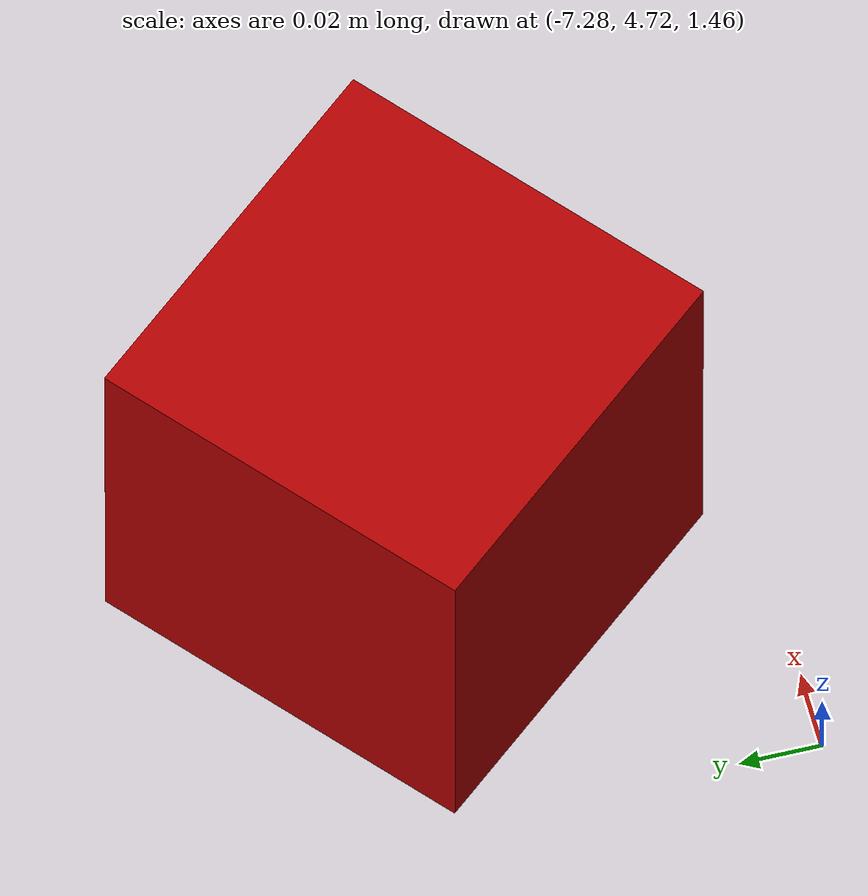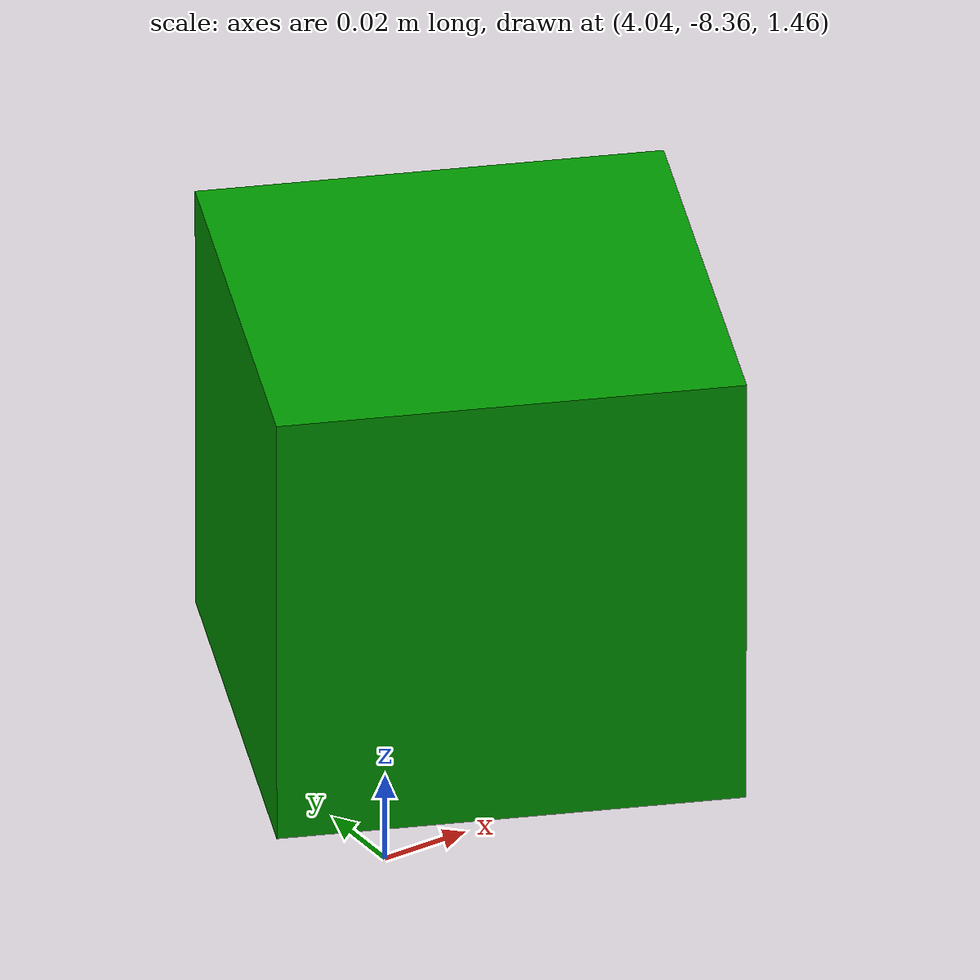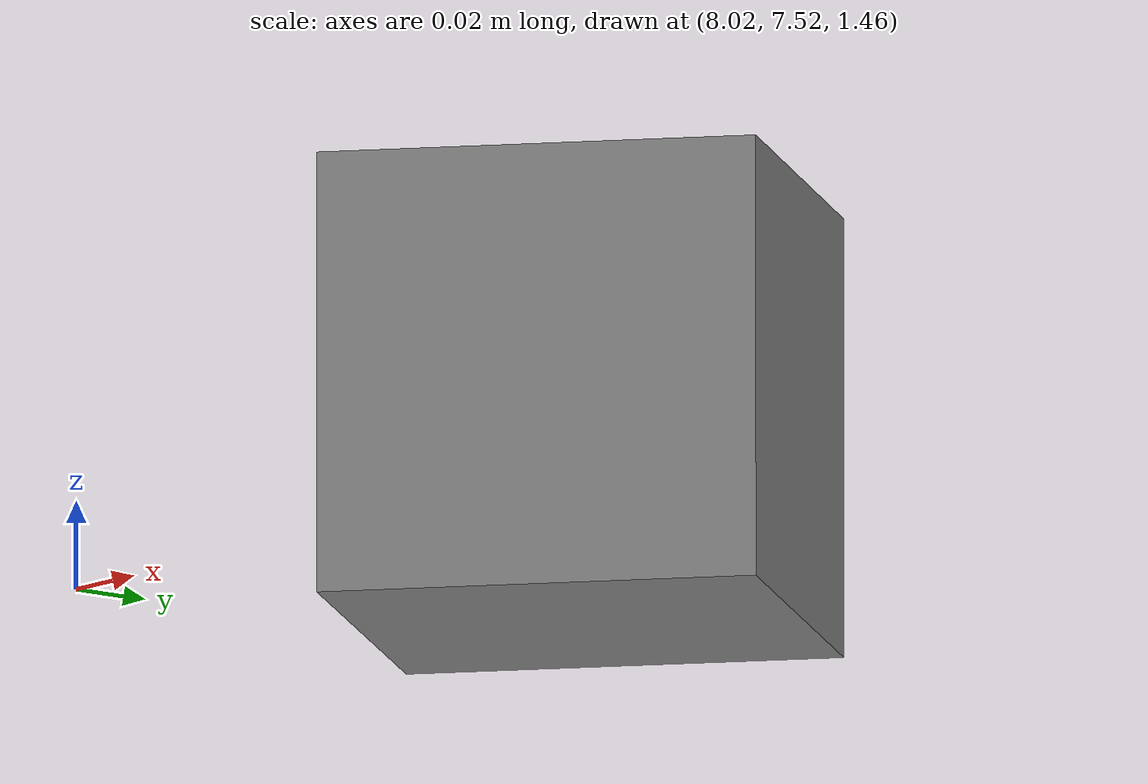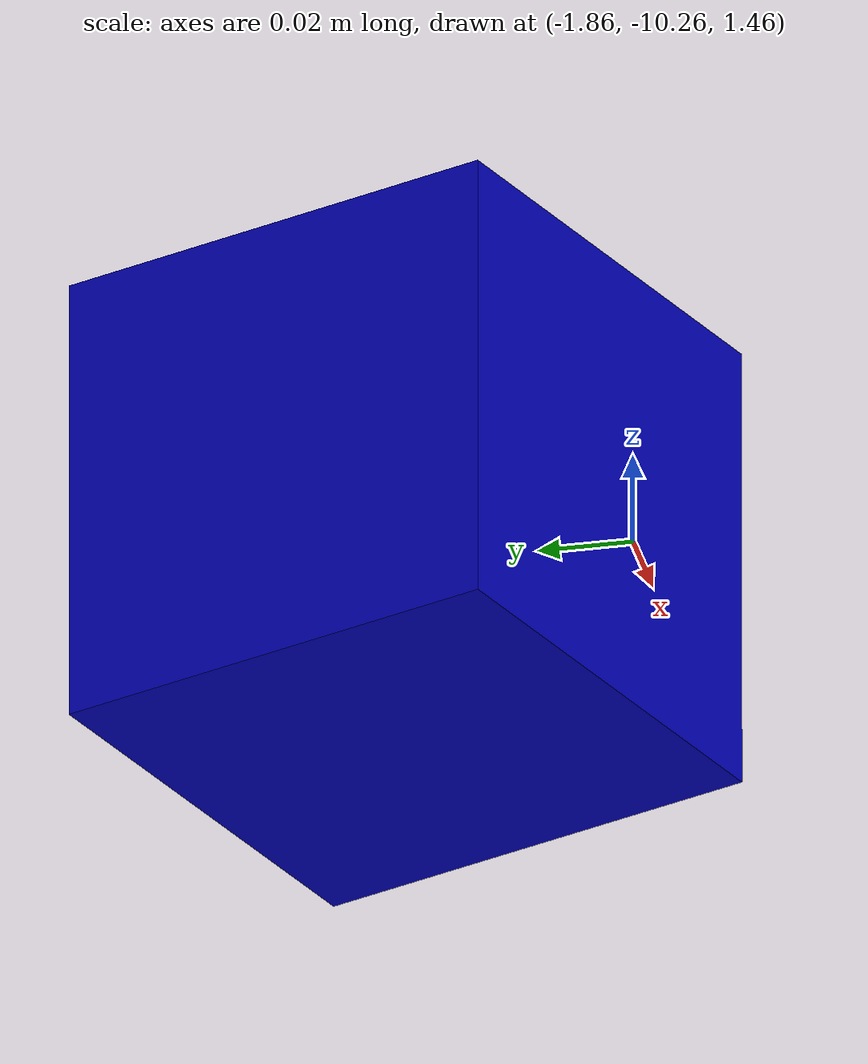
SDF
<?xml version='1.0'?>
<sdf version='1.8'>
  <model name='cubes'>
    <pose>0 0 0 0 0 0</pose>
    <static>false</static>

    <link name='cube_1'>
      <pose>-7.2 4.8 1.5 0 0 0.7</pose>
      <collision name='cube_1_collision'>
        <geometry>
          <box>
            <size>0.1 0.1 0.1</size>
          </box>
        </geometry>
      </collision>
      <visual name='cube_1_visual'>
        <geometry>
          <box>
            <size>0.1 0.1 0.1</size>
          </box>
        </geometry>
        <material>
          <ambient>0.5 0 0 1</ambient>
          <diffuse>0.7 0 0 1</diffuse>
          <specular>0.2 0 0 1</specular>
        </material>
      </visual>
      <inertial>
        <mass>0.1</mass>
        <inertia>
          <ixx>0.000167</ixx>
          <ixy>0</ixy>
          <ixz>0</ixz>
          <iyy>0.000167</iyy>
          <iyz>0</iyz>
          <izz>0.000167</izz>
        </inertia>
      </inertial>
    </link>
    <link name='cube_2'>
      <pose>4.1 -8.3 1.5 0 0 -0.4</pose>
      <collision name='cube_2_collision'>
        <geometry>
          <box>
            <size>0.1 0.1 0.1</size>
          </box>
        </geometry>
      </collision>
      <visual name='cube_2_visual'>
        <geometry>
          <box>
            <size>0.1 0.1 0.1</size>
          </box>
        </geometry>
        <material>
          <ambient>0 0.4 0 1</ambient>
          <diffuse>0 0.6 0 1</diffuse>
          <specular>0 0.2 0 1</specular>
        </material>
      </visual>
      <inertial>
        <mass>0.1</mass>
        <inertia>
          <ixx>0.000167</ixx>
          <ixy>0</ixy>
          <ixz>0</ixz>
          <iyy>0.000167</iyy>
          <iyz>0</iyz>
          <izz>0.000167</izz>
        </inertia>
      </inertial>
    </link>
    <link name='cube_3'>
      <pose>-1.8 -10.2 1.5 0 0 1.2</pose>
      <collision name='cube_3_collision'>
        <geometry>
          <box>
            <size>0.1 0.1 0.1</size>
          </box>
        </geometry>
      </collision>
      <visual name='cube_3_visual'>
        <geometry>
          <box>
            <size>0.1 0.1 0.1</size>
          </box>
        </geometry>
        <material>
          <ambient>0 0 0.5 1</ambient>
          <diffuse>0 0 0.7 1</diffuse>
          <specular>0 0 0.2 1</specular>
        </material>
      </visual>
      <inertial>
        <mass>0.1</mass>
        <inertia>
          <ixx>0.000167</ixx>
          <ixy>0</ixy>
          <ixz>0</ixz>
          <iyy>0.000167</iyy>
          <iyz>0</iyz>
          <izz>0.000167</izz>
        </inertia>
      </inertial>
    </link>
    <link name='cube_4'>
      <pose>8.1 7.6 1.5 0 0 -0.9</pose>
      <collision name='cube_4_collision'>
        <geometry>
          <box>
            <size>0.1 0.1 0.1</size>
          </box>
        </geometry>
      </collision>
      <visual name='cube_4_visual'>
        <geometry>
          <box>
            <size>0.1 0.1 0.1</size>
          </box>
        </geometry>
        <material>
          <ambient>0.3 0.3 0.3 1</ambient>
          <diffuse>0.5 0.5 0.5 1</diffuse>
          <specular>0.1 0.1 0.1 1</specular>
        </material>
      </visual>
      <inertial>
        <mass>0.1</mass>
        <inertia>
          <ixx>0.000167</ixx>
          <ixy>0</ixy>
          <ixz>0</ixz>
          <iyy>0.000167</iyy>
          <iyz>0</iyz>
          <izz>0.000167</izz>
        </inertia>
      </inertial>
    </link>
  </model>
</sdf>
